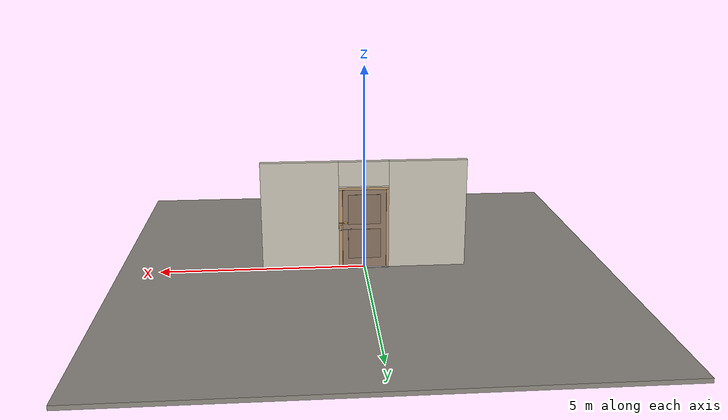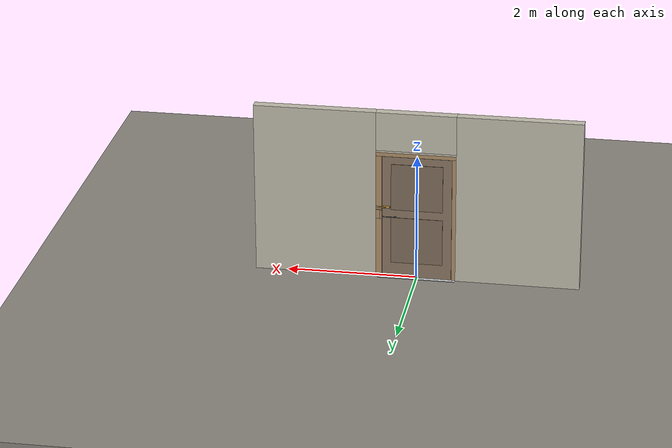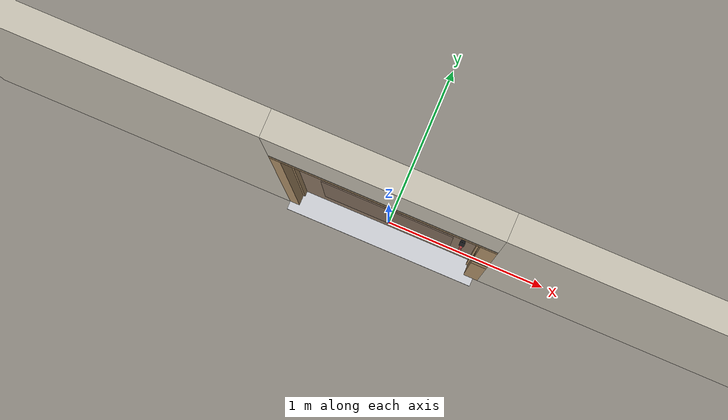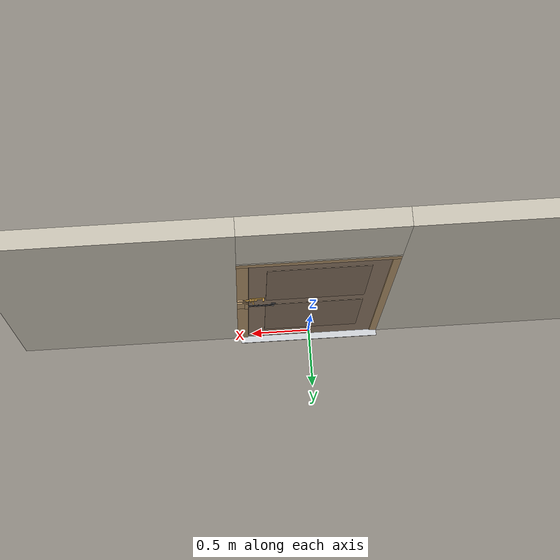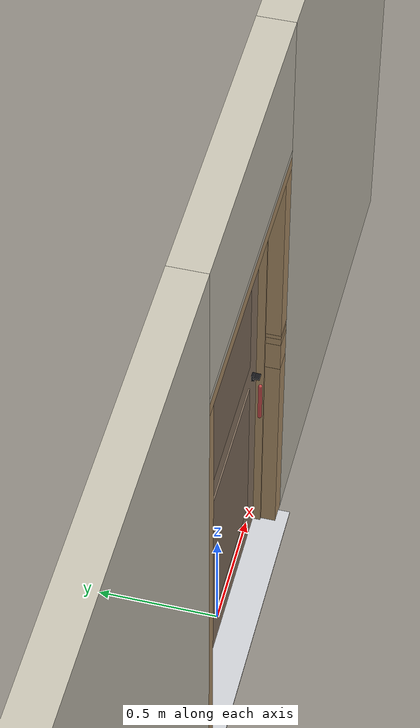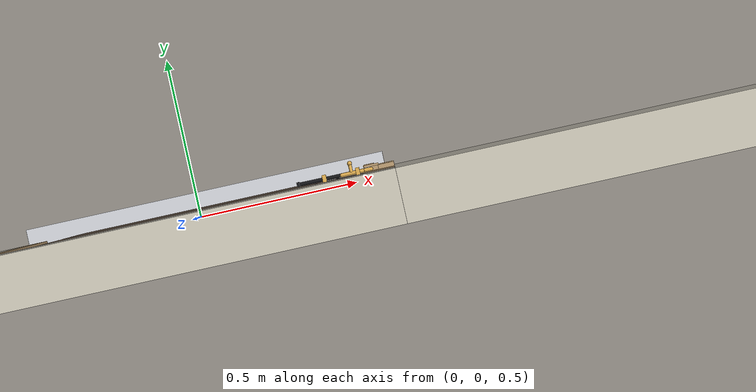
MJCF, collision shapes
<?xml version="1.0" ?>
<mujoco model="db0693_swing_single_full">
  <compiler angle="radian" meshdir="../../hardware" texturedir="../../textures" autolimits="true" inertiafromgeom="false"/>
  <option timestep="0.002" integrator="implicitfast" cone="elliptic" impratio="10" noslip_iterations="3">
    <flag multiccd="enable"/>
  </option>
  <size memory="16M"/>
  <default>
    <geom condim="4" solref="0.005 1" solimp="0.95 0.99 0.001"/>
    <joint solreflimit="0.005 1" solimplimit="0.95 0.99 0.001"/>
    <tendon solreflimit="0.005 1"/>
    <equality solref="0.002 1"/>
  </default>
  <visual>
    <headlight ambient="0.4 0.4 0.4" diffuse="0.7 0.7 0.7" specular="0.2 0.2 0.2"/>
    <quality shadowsize="4096"/>
    <map znear="0.01" zfar="60"/>
  </visual>
  <asset>
    <mesh name="hinge_e22b26c0c1" file="hinge_e22b26c0c1.obj"/>
    <mesh name="hinge_jamb_e1d088f8dc" file="hinge_jamb_e1d088f8dc.obj"/>
    <mesh name="thumb_latch_0073ea78ed" file="thumb_latch_0073ea78ed.obj"/>
    <material name="mat_floor" rgba="0.55 0.53 0.5 1" specular="0.2" shininess="0.15" reflectance="0"/>
    <material name="mat_wall" rgba="0.78 0.76 0.7 1" specular="0.2" shininess="0.1" reflectance="0"/>
    <material name="mat_leaf" rgba="0.56 0.475 0.4 1" specular="0.2" shininess="0.5" reflectance="0"/>
    <material name="mat_leaf_panel" rgba="0.515 0.437 0.368 1" specular="0.2" shininess="0.5" reflectance="0"/>
    <material name="mat_hinge" rgba="0.45 0.3 0.22 1" specular="0.5" shininess="0.1" reflectance="0.2"/>
    <material name="mat_op_wrought_iron" rgba="0.08 0.08 0.09 1" specular="0.56" shininess="0.25" reflectance="0.24"/>
    <material name="mat_op_brass" rgba="0.85 0.66 0.3 1" specular="0.8" shininess="0.75" reflectance="0.4"/>
    <material name="mat_frame" rgba="0.7 0.58 0.42 1" specular="0.2" shininess="0.5" reflectance="0"/>
    <material name="mat_threshold" rgba="0.8 0.81 0.83 1" specular="0.8" shininess="0.6" reflectance="0.4"/>
    <texture name="skybox" type="skybox" builtin="gradient" rgb1="0.6 0.7 0.85" rgb2="0.9 0.92 0.95" width="256" height="256"/>
  </asset>
  <worldbody>
    <light name="sun" pos="1.5 -2.5 4" dir="-0.3 0.5 -0.8" directional="true" diffuse="0.8 0.8 0.8" specular="0.3 0.3 0.3" castshadow="true"/>
    <light name="fill" pos="-1.5 2.5 3" dir="0.3 -0.5 -0.7" directional="true" diffuse="0.35 0.35 0.4" castshadow="false"/>
    <camera name="robot_view" pos="0 -2.541625 1.698475" xyaxes="1 0 0 0 0.26963 0.962964" fovy="52"/>
    <camera name="far_view" pos="0 2.454625 1.698475" xyaxes="-1 0 0 0 -0.26963 0.962964" fovy="52"/>
    <camera name="iso" pos="1.898575 -2.141925 2.098175" xyaxes="0.741536 0.670913 0 -0.242917 0.268487 0.932151" fovy="46"/>
    <camera name="detail_handle" pos="0.633 -0.857 1.144" xyaxes="0.97561 0.219512 0 -0.070934 0.315262 0.94635" fovy="38"/>
    <geom name="floor" type="box" size="6 6 0.05" pos="0 0 -0.05" material="mat_floor" group="0" contype="1" conaffinity="1" friction="0.8 0.005 0.0001" density="2400"/>
    <geom name="wall_left" type="box" size="0.9515 0.0725 1.35" pos="-1.5485 -0.0435 1.35" material="mat_wall" group="0" contype="1" conaffinity="1" friction="0.6 0.005 0.0001" density="800"/>
    <geom name="wall_right" type="box" size="0.9365 0.0725 1.35" pos="1.5635 -0.0435 1.35" material="mat_wall" group="0" contype="1" conaffinity="1" friction="0.6 0.005 0.0001" density="800"/>
    <geom name="wall_header" type="box" size="0.612 0.0725 0.306" pos="0.015 -0.0435 2.394" material="mat_wall" group="0" contype="1" conaffinity="1" friction="0.6 0.005 0.0001" density="800"/>
    <geom name="hinge_0_jamb" type="mesh" mesh="hinge_jamb_e1d088f8dc" pos="-0.534 0.029 0.259" quat="0 1 0 0" material="mat_hinge" group="1" contype="0" conaffinity="0" density="7850"/>
    <geom name="hinge_1_jamb" type="mesh" mesh="hinge_jamb_e1d088f8dc" pos="-0.534 0.029 1.0015" quat="0 1 0 0" material="mat_hinge" group="1" contype="0" conaffinity="0" density="7850"/>
    <geom name="hinge_2_jamb" type="mesh" mesh="hinge_jamb_e1d088f8dc" pos="-0.534 0.029 1.814" quat="0 1 0 0" material="mat_hinge" group="1" contype="0" conaffinity="0" density="7850"/>
    <geom name="leaf_latch_bar_keeper_b" type="box" size="0.015 0.0025 0.0005" pos="0.5365 0.034 0.9765" quat="-0.5 -0.5 0.5 0.5" material="mat_op_wrought_iron" group="1" contype="0" conaffinity="0" density="7800"/>
    <geom name="leaf_latch_bar_keeper_l" type="box" size="0.0025 0.07 0.0005" pos="0.5365 0.0465 1.049" quat="-0.5 -0.5 0.5 0.5" material="mat_op_wrought_iron" group="1" contype="0" conaffinity="0" density="7800"/>
    <geom name="leaf_latch_bar_keeper_t" type="box" size="0.015 0.0025 0.0005" pos="0.5365 0.034 1.1215" quat="-0.5 -0.5 0.5 0.5" material="mat_op_wrought_iron" group="1" contype="0" conaffinity="0" density="7800"/>
    <geom name="leaf_latch_bar_keeper_r" type="box" size="0.0025 0.07 0.0005" pos="0.5365 0.0215 1.049" quat="-0.5 -0.5 0.5 0.5" material="mat_op_wrought_iron" group="1" contype="0" conaffinity="0" density="7800"/>
    <geom name="leaf_aux_bolt_keeper_b" type="box" size="0.014 0.003 0.0005" pos="0.5365 0.034 1.151" quat="-0.5 -0.5 0.5 0.5" material="mat_op_brass" group="1" contype="0" conaffinity="0" density="7800"/>
    <geom name="leaf_aux_bolt_keeper_l" type="box" size="0.003 0.01 0.0005" pos="0.5365 0.045 1.164" quat="-0.5 -0.5 0.5 0.5" material="mat_op_brass" group="1" contype="0" conaffinity="0" density="7800"/>
    <geom name="leaf_aux_bolt_keeper_t" type="box" size="0.014 0.003 0.0005" pos="0.5365 0.034 1.177" quat="-0.5 -0.5 0.5 0.5" material="mat_op_brass" group="1" contype="0" conaffinity="0" density="7800"/>
    <geom name="leaf_aux_bolt_keeper_r" type="box" size="0.003 0.01 0.0005" pos="0.5365 0.023 1.164" quat="-0.5 -0.5 0.5 0.5" material="mat_op_brass" group="1" contype="0" conaffinity="0" density="7800"/>
    <geom name="jamb_hinge" type="box" size="0.03 0.0725 0.999" pos="-0.567 -0.0435 0.999" material="mat_frame" group="0" contype="1" conaffinity="1" friction="0.6 0.005 0.0001" density="750"/>
    <geom name="strike_1049_wall_n" type="box" size="0.045 0.07 0.07" pos="0.582 -0.046 1.049" material="mat_frame" group="0" contype="1" conaffinity="1" friction="0.6 0.005 0.0001" density="750"/>
    <geom name="strike_1049_wall_p" type="box" size="0.015 0.003 0.07" pos="0.552 0.047 1.049" material="mat_frame" group="0" contype="1" conaffinity="1" friction="0.6 0.005 0.0001" density="750"/>
    <geom name="strike_1049_back" type="box" size="0.035 0.01 0.07" pos="0.592 0.034 1.049" material="mat_frame" group="0" contype="1" conaffinity="1" friction="0.6 0.005 0.0001" density="750"/>
    <geom name="strike_1164_wall_n" type="box" size="0.045 0.071 0.01" pos="0.582 -0.045 1.164" material="mat_frame" group="0" contype="1" conaffinity="1" friction="0.6 0.005 0.0001" density="750"/>
    <geom name="strike_1164_wall_p" type="box" size="0.022 0.003 0.01" pos="0.559 0.045 1.164" material="mat_frame" group="0" contype="1" conaffinity="1" friction="0.6 0.005 0.0001" density="750"/>
    <geom name="strike_1164_back" type="box" size="0.024 0.008 0.01" pos="0.603 0.034 1.164" material="mat_frame" group="0" contype="1" conaffinity="1" friction="0.6 0.005 0.0001" density="750"/>
    <geom name="jamb_strike_0" type="box" size="0.045 0.0725 0.4895" pos="0.582 -0.0435 0.4895" material="mat_frame" group="0" contype="1" conaffinity="1" friction="0.6 0.005 0.0001" density="750"/>
    <geom name="jamb_strike_1" type="box" size="0.045 0.0725 0.0175" pos="0.582 -0.0435 1.1365" material="mat_frame" group="0" contype="1" conaffinity="1" friction="0.6 0.005 0.0001" density="750"/>
    <geom name="jamb_strike_2" type="box" size="0.045 0.0725 0.412" pos="0.582 -0.0435 1.586" material="mat_frame" group="0" contype="1" conaffinity="1" friction="0.6 0.005 0.0001" density="750"/>
    <geom name="jamb_head" type="box" size="0.612 0.0725 0.03" pos="0.015 -0.0435 2.028" material="mat_frame" group="0" contype="1" conaffinity="1" friction="0.6 0.005 0.0001" density="750"/>
    <geom name="head_stud" type="box" size="0.612 0.0725 0.015" pos="0.015 -0.0435 2.073" material="mat_wall" group="0" contype="1" conaffinity="1" friction="0.6 0.005 0.0001" density="500"/>
    <geom name="stop_hinge" type="box" size="0.0055 0.016 0.999" pos="-0.5315 -0.0385 0.999" material="mat_frame" group="0" contype="1" conaffinity="1" friction="0.6 0.005 0.0001" density="750"/>
    <geom name="stop_strike" type="box" size="0.0055 0.016 0.999" pos="0.5315 -0.0385 0.999" material="mat_frame" group="0" contype="1" conaffinity="1" friction="0.6 0.005 0.0001" density="750"/>
    <geom name="stop_head" type="box" size="0.537 0.016 0.0055" pos="0 -0.0385 1.9925" material="mat_frame" group="0" contype="1" conaffinity="1" friction="0.6 0.005 0.0001" density="750"/>
    <geom name="threshold" type="box" size="0.597 0.1225 0.004" pos="0 -0.0435 0.004" material="mat_threshold" group="0" contype="1" conaffinity="1" friction="0.6 0.005 0.0001" density="2700"/>
    <site name="approach_point" pos="0 -1.5 0" quat="1 0 0 0" size="0.05" rgba="0.2 0.9 0.2 0.5" group="4"/>
    <site name="goal_point" pos="0 1.5 0" quat="1 0 0 0" size="0.05" rgba="0.2 0.9 0.2 0.5" group="4"/>
    <site name="door_plane_center" pos="0 0 0.999" quat="1 0 0 0" size="0.02" rgba="0.2 0.9 0.2 0.5" group="4"/>
    <body name="leaf" pos="-0.537 0 0">
      <inertial pos="0.537271 -0.000231 1.000435" mass="66.273998" quat="-0.498371 0.500006 0.500117 0.501501" diaginertia="6.539778333 21.532871046 28.047672366"/>
      <joint name="leaf_hinge" type="hinge" axis="0 0 1" pos="0.003 0.029 0" limited="true" range="0 2.443461" damping="0.514661" frictionloss="14.407974" armature="0.02"/>
      <geom name="leaf_slab" type="box" size="0.5335 0.022 0.9925" pos="0.5365 0 1.0015" material="mat_leaf" group="0" contype="1" conaffinity="1" friction="0.4 0.005 0.0001" density="1"/>
      <geom name="leaf_panel_0_n" type="box" size="0.39613 0.003 0.37435" pos="0.5365 -0.025 0.6217" material="mat_leaf_panel" group="1" contype="0" conaffinity="0" density="1"/>
      <geom name="leaf_panel_0_p" type="box" size="0.39613 0.003 0.37435" pos="0.5365 0.025 0.6217" material="mat_leaf_panel" group="1" contype="0" conaffinity="0" density="1"/>
      <geom name="leaf_panel_1_n" type="box" size="0.39613 0.003 0.37435" pos="0.5365 -0.025 1.5004" material="mat_leaf_panel" group="1" contype="0" conaffinity="0" density="1"/>
      <geom name="leaf_panel_1_p" type="box" size="0.39613 0.003 0.37435" pos="0.5365 0.025 1.5004" material="mat_leaf_panel" group="1" contype="0" conaffinity="0" density="1"/>
      <geom name="hinge_0" type="mesh" mesh="hinge_e22b26c0c1" pos="0.003 0.029 0.259" quat="0 1 0 0" material="mat_hinge" group="1" contype="0" conaffinity="0" density="7850"/>
      <geom name="hinge_1" type="mesh" mesh="hinge_e22b26c0c1" pos="0.003 0.029 1.0015" quat="0 1 0 0" material="mat_hinge" group="1" contype="0" conaffinity="0" density="7850"/>
      <geom name="hinge_2" type="mesh" mesh="hinge_e22b26c0c1" pos="0.003 0.029 1.814" quat="0 1 0 0" material="mat_hinge" group="1" contype="0" conaffinity="0" density="7850"/>
      <geom name="leaf_suffolk_grip" type="mesh" mesh="thumb_latch_0073ea78ed" pos="0.99 -0.022 0.864" quat="0.707107 0.707107 0 0" material="mat_op_wrought_iron" group="1" contype="0" conaffinity="0" density="7000"/>
      <geom name="leaf_suffolk_grip_col" type="capsule" size="0.008 0.09" pos="0.99 -0.057 0.864" material="mat_op_wrought_iron" group="3" contype="1" conaffinity="1" rgba="0.8 0.3 0.3 0.25" friction="0.7 0.01 0.0001" density="7000"/>
      <geom name="leaf_latch_bar_pivot" type="box" size="0.018 0.002 0.018" pos="0.87 0.024 1.004" material="mat_op_wrought_iron" group="1" contype="0" conaffinity="0" density="7000"/>
      <geom name="leaf_latch_bar_pin" type="cylinder" size="0.005 0.01" pos="0.87 0.032 1.004" quat="0.707107 -0.707107 0 0" material="mat_op_wrought_iron" group="1" contype="0" conaffinity="0" density="7000"/>
      <geom name="leaf_aux_bolt_plate" type="box" size="0.0595 0.019 0.001" pos="1.0025 0.023 1.164" quat="0.707107 -0.707107 0 0" material="mat_op_brass" group="1" contype="0" conaffinity="0" density="7800"/>
      <geom name="leaf_aux_bolt_guide_0_leg_n" type="box" size="0.006 0.002 0.0125" pos="1.054 0.0345 1.175" quat="0.707107 -0.707107 0 0" material="mat_op_brass" group="1" contype="0" conaffinity="0" density="7800"/>
      <geom name="leaf_aux_bolt_guide_0_leg_p" type="box" size="0.006 0.002 0.0125" pos="1.054 0.0345 1.153" quat="0.707107 -0.707107 0 0" material="mat_op_brass" group="1" contype="0" conaffinity="0" density="7800"/>
      <geom name="leaf_aux_bolt_guide_0_bridge" type="box" size="0.006 0.013 0.002" pos="1.054 0.045 1.164" quat="0.707107 -0.707107 0 0" material="mat_op_brass" group="1" contype="0" conaffinity="0" density="7800"/>
      <geom name="leaf_aux_bolt_guide_1_leg_n" type="box" size="0.006 0.002 0.0125" pos="0.953 0.0345 1.175" quat="0.707107 -0.707107 0 0" material="mat_op_brass" group="1" contype="0" conaffinity="0" density="7800"/>
      <geom name="leaf_aux_bolt_guide_1_leg_p" type="box" size="0.006 0.002 0.0125" pos="0.953 0.0345 1.153" quat="0.707107 -0.707107 0 0" material="mat_op_brass" group="1" contype="0" conaffinity="0" density="7800"/>
      <geom name="leaf_aux_bolt_guide_1_bridge" type="box" size="0.006 0.013 0.002" pos="0.953 0.045 1.164" quat="0.707107 -0.707107 0 0" material="mat_op_brass" group="1" contype="0" conaffinity="0" density="7800"/>
      <site name="leaf_grip_n" pos="0.99 -0.057 0.864" quat="1 0 0 0" size="0.012" rgba="0.2 0.9 0.2 0.5" group="4"/>
      <site name="leaf_edge_mid" pos="1.07 0 0.9925" quat="1 0 0 0" size="0.02" rgba="0.2 0.9 0.2 0.5" group="4"/>
      <body name="leaf_thumb" pos="0.99 -0.022 1.009">
        <inertial pos="0 -0.002591 -0.005803" mass="0.128464" quat="0.698937 -0.107178 -0.107178 -0.698937" diaginertia="0.000010795 0.000049998 0.000051452"/>
        <joint name="leaf_thumb_hinge" type="hinge" axis="1 0 0" limited="true" range="0 0.3" damping="0.155346" frictionloss="0.032" stiffness="0.6" springref="-0.5" armature="0.01"/>
        <geom name="leaf_thumb_geom" type="box" size="0.015 0.014 0.003" pos="0 -0.02 0" material="mat_op_wrought_iron" group="0" contype="1" conaffinity="1" friction="0.6 0.005 0.0001" density="7000"/>
        <geom name="leaf_thumb_boss" type="box" size="0.012 0.008 0.013" pos="0 -0.004 -0.005" material="mat_op_wrought_iron" group="1" contype="0" conaffinity="0" density="7000"/>
        <geom name="leaf_thumb_lifter" type="box" size="0.004 0.026 0.004" pos="0 0.028 -0.017" material="mat_op_wrought_iron" group="1" contype="0" conaffinity="0" density="7000"/>
        <site name="leaf_thumb_push" pos="0 -0.024 0.005" quat="1 0 0 0" size="0.01" rgba="0.2 0.9 0.2 0.5" group="4"/>
      </body>
      <body name="leaf_latch_bar" pos="0.87 0.034 1.004">
        <inertial pos="0.106 0 0" mass="0.25" quat="0 0 0.707107 0.707107" diaginertia="0.000004465 0.000904065 0.000904065"/>
        <joint name="leaf_latch_bar_hinge" type="hinge" axis="0 -1 0" limited="true" range="0 0.6" damping="0.01" frictionloss="0.01" armature="0.005"/>
        <geom name="leaf_latch_bar_geom" type="capsule" size="0.006 0.1" pos="0.106 0 0" quat="0.707107 0 0.707107 0" material="mat_op_wrought_iron" group="0" contype="1" conaffinity="1" friction="0.6 0.005 0.0001" density="7850"/>
      </body>
      <body name="leaf_aux_bolt" pos="1.07 0.034 1.164">
        <inertial pos="-0.023563 0.00492 0" mass="0.111784" quat="0.998595 0 0 -0.05299" diaginertia="0.000012212 0.000071985 0.000082309"/>
        <joint name="leaf_aux_bolt_slide" type="slide" axis="-1 0 0" limited="true" range="0 0.001" damping="1" frictionloss="1" armature="0.1"/>
        <geom name="leaf_aux_bolt_rod" type="capsule" size="0.006 0.044" pos="-0.02 0 0" quat="0.707107 0 0.707107 0" material="mat_op_brass" group="0" contype="1" conaffinity="1" friction="0.6 0.005 0.0001" density="7850"/>
        <geom name="leaf_aux_bolt_knob" type="capsule" size="0.005 0.01" pos="-0.035 0.015 0" quat="0.707107 -0.707107 0 0" material="mat_op_brass" group="0" contype="1" conaffinity="1" friction="0.6 0.005 0.0001" density="7850"/>
        <geom name="leaf_aux_bolt_knob_end" type="sphere" size="0.00675" pos="-0.035 0.03 0" material="mat_op_brass" group="1" contype="0" conaffinity="0" density="7850"/>
        <site name="leaf_aux_bolt_grip" pos="-0.035 0.034 0" quat="1 0 0 0" size="0.012" rgba="0.2 0.9 0.2 0.5" group="4"/>
      </body>
    </body>
  </worldbody>
  <equality>
    <joint name="leaf_thumb_couple" joint1="leaf_latch_bar_hinge" joint2="leaf_thumb_hinge" polycoef="0 2 0 0 0" active="true"/>
  </equality>
  <sensor>
    <jointpos name="leaf_hinge_pos" joint="leaf_hinge"/>
    <jointvel name="leaf_hinge_vel" joint="leaf_hinge"/>
    <jointpos name="leaf_thumb_hinge_pos" joint="leaf_thumb_hinge"/>
    <jointvel name="leaf_thumb_hinge_vel" joint="leaf_thumb_hinge"/>
    <jointpos name="leaf_latch_bar_hinge_pos" joint="leaf_latch_bar_hinge"/>
    <jointvel name="leaf_latch_bar_hinge_vel" joint="leaf_latch_bar_hinge"/>
    <jointpos name="leaf_aux_bolt_slide_pos" joint="leaf_aux_bolt_slide"/>
    <jointvel name="leaf_aux_bolt_slide_vel" joint="leaf_aux_bolt_slide"/>
  </sensor>
</mujoco>
